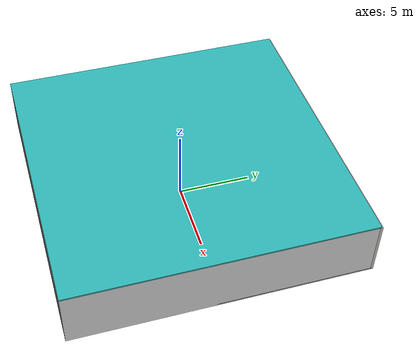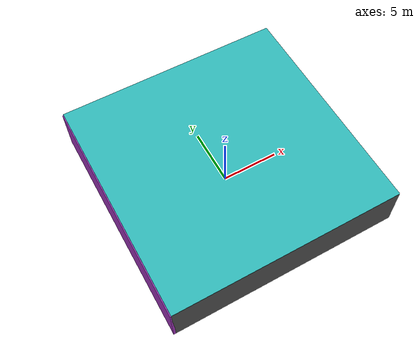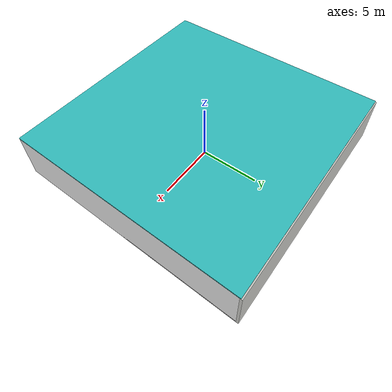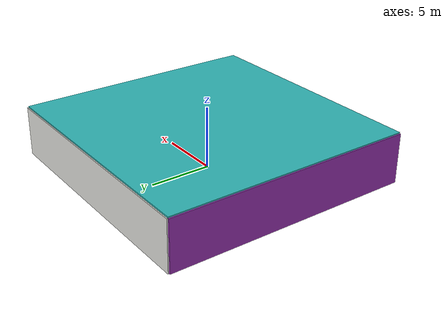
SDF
<sdf version="1.4">
 <world name="default">
  <physics type="ode">
   <max_step_size>0.001</max_step_size>
   <real_time_factor>1</real_time_factor>
   <real_time_update_rate>1000</real_time_update_rate>
   <gravity>0 0 -9.8</gravity>
  </physics>
  <scene><ambient>0.4 0.4 0.4 1</ambient><background>0.7 0.7 0.7 1</background><shadows>1</shadows></scene>
  <model name="Surrounding">
   <static>1</static>
   <link name="Ceiling">
    <collision name="Ceiling_Collision"><geometry><box><size>20 20 0.1</size></box></geometry></collision>
    <visual name="Ceiling_Visual">
     <geometry><box><size>20 20 0.1</size></box></geometry>
     <material>
      <script><uri>file://media/materials/scripts/gazebo.material</uri><name>Gazebo/TurquoiseGlow</name></script>
     </material>
    </visual>
    <pose>0 0 4.05 0 0 0</pose>
   </link>
   <link name="Wall_South">
    <collision name="Wall_South_Collision">
     <geometry><box><size>20 0 4</size></box></geometry>
     <pose>0 0 2 0 -0 0</pose>
    </collision>
    <visual name="Wall_South_Visual">
     <pose>0 0 2 0 -0 0</pose>
     <geometry><box><size>20 0 4</size></box></geometry>
     <material>
      <script><uri>file://media/materials/scripts/gazebo.material</uri><name>Gazebo/Road</name></script>
     </material>
    </visual>
    <velocity_decay><linear>0</linear><angular>0</angular></velocity_decay>
    <pose>0 -10 0 0 -0 0</pose>
   </link>
   <link name="Wall_East">
    <collision name="Wall_21_Collision">
     <geometry><box><size>20 0 4</size></box></geometry>
     <pose>0 0 2 0 -0 0</pose>
    </collision>
    <visual name="Wall_21_Visual">
     <pose>0 0 2 0 -0 0</pose>
     <geometry><box><size>20 0 4</size></box></geometry>
     <material>
      <script><uri>file://media/materials/scripts/gazebo.material</uri><name>Gazebo/WhiteGlow</name></script>
     </material>
    </visual>
    <velocity_decay><linear>0</linear><angular>0</angular></velocity_decay>
    <pose>10 0 0 0 -0 1.5708</pose>
   </link>
   <link name="Wall_North">
    <collision name="Wall_22_Collision">
     <geometry><box><size>20 0.2 4</size></box></geometry>
     <pose>0 0 2 0 -0 0</pose>
    </collision>
    <visual name="Wall_22_Visual">
     <pose>0 0 2 0 -0 0</pose>
     <geometry><box><size>20 0.2 4</size></box></geometry>
     <material>
      <script><uri>file://media/materials/scripts/gazebo.material</uri><name>Gazebo/CeilingTiled</name></script>
     </material>
    </visual>
    <velocity_decay><linear>0</linear><angular>0</angular></velocity_decay>
    <pose>0 10 0 0 -0 0</pose>
   </link>
   <link name="Wall_West">
    <collision name="Wall_23_Collision">
     <geometry><box><size>20 0.2 4</size></box></geometry>
     <pose>0 0 2 0 -0 0</pose>
    </collision>
    <visual name="Wall_23_Visual">
     <pose>0 0 2 0 -0 0</pose>
     <geometry><box><size>20 0.2 4</size></box></geometry>
     <material>
      <script><uri>file://media/materials/scripts/gazebo.material</uri><name>Gazebo/PurpleGlow</name></script>
     </material>
    </visual>
    <velocity_decay><linear>0</linear><angular>0</angular></velocity_decay>
    <pose>-10 0 0 0 0 -1.5708</pose>
   </link>
   <link name="Ground_link">
    <collision name="collision">
     <pose>0 0 .05 0 -0 0</pose>
     <geometry><box><size>20 20 0.1</size></box></geometry>
    </collision>
    <visual name="visual">
     <pose>0 0 .05 0 -0 0</pose>
     <geometry><box><size>20 20 0.1</size></box></geometry>
     <material>
      <script><uri>file://media/materials/scripts/gazebo.material</uri><name>Gazebo/Grey</name></script>
     </material>
    </visual>
   </link>
   <static>1</static>
  </model>
  <spherical_coordinates>
   <surface_model>EARTH_WGS84</surface_model>
   <latitude_deg>0</latitude_deg>
   <longitude_deg>0</longitude_deg>
   <elevation>0</elevation>
   <heading_deg>0</heading_deg>
  </spherical_coordinates>
  <light name="lightball_0" type="diffuse">
   <diffuse>0.8 0.8 0.8 1</diffuse>
   <specular>0.2 0.2 0.2 1</specular>
   <attenuation>
    <range>100</range>
    <constant>0.7</constant>
    <linear>0.01</linear>
    <quadratic>0.001</quadratic>
   </attenuation>
   <direction>-0.5 0.1 -0.9</direction>
   <pose>-2.12548193292 1.3463109624 1.05063281036 0 0 0</pose>
  </light>
  <light name="lightball_1" type="diffuse">
   <diffuse>0.8 0.8 0.8 1</diffuse>
   <specular>0.2 0.2 0.2 1</specular>
   <attenuation>
    <range>100</range>
    <constant>0.7</constant>
    <linear>0.01</linear>
    <quadratic>0.001</quadratic>
   </attenuation>
   <direction>-0.5 0.1 -0.9</direction>
   <pose>9.52622737087 1.13383821043 1.20469005897 0 0 0</pose>
  </light>
  <light name="lightball_2" type="diffuse">
   <diffuse>0.8 0.8 0.8 1</diffuse>
   <specular>0.2 0.2 0.2 1</specular>
   <attenuation>
    <range>100</range>
    <constant>0.7</constant>
    <linear>0.01</linear>
    <quadratic>0.001</quadratic>
   </attenuation>
   <direction>-0.5 0.1 -0.9</direction>
   <pose>-1.66750461904 -0.974155469836 1.21316819811 0 0 0</pose>
  </light>
  <light name="lightball_3" type="diffuse">
   <diffuse>0.8 0.8 0.8 1</diffuse>
   <specular>0.2 0.2 0.2 1</specular>
   <attenuation>
    <range>100</range>
    <constant>0.7</constant>
    <linear>0.01</linear>
    <quadratic>0.001</quadratic>
   </attenuation>
   <direction>-0.5 0.1 -0.9</direction>
   <pose>2.1894106143 -5.36260815214 1.46392110615 0 0 0</pose>
  </light>
  <light name="lightball_4" type="diffuse">
   <diffuse>0.8 0.8 0.8 1</diffuse>
   <specular>0.2 0.2 0.2 1</specular>
   <attenuation>
    <range>100</range>
    <constant>0.7</constant>
    <linear>0.01</linear>
    <quadratic>0.001</quadratic>
   </attenuation>
   <direction>-0.5 0.1 -0.9</direction>
   <pose>-0.523515179288 7.19485478538 1.04245289387 0 0 0</pose>
  </light>
  <light name="lightball_5" type="diffuse">
   <diffuse>0.8 0.8 0.8 1</diffuse>
   <specular>0.2 0.2 0.2 1</specular>
   <attenuation>
    <range>100</range>
    <constant>0.7</constant>
    <linear>0.01</linear>
    <quadratic>0.001</quadratic>
   </attenuation>
   <direction>-0.5 0.1 -0.9</direction>
   <pose>3.38964767683 -2.85292668361 3.74718654172 0 0 0</pose>
  </light>
  <light name="lightball_6" type="diffuse">
   <diffuse>0.8 0.8 0.8 1</diffuse>
   <specular>0.2 0.2 0.2 1</specular>
   <attenuation>
    <range>100</range>
    <constant>0.7</constant>
    <linear>0.01</linear>
    <quadratic>0.001</quadratic>
   </attenuation>
   <direction>-0.5 0.1 -0.9</direction>
   <pose>-8.57630824481 3.07995819317 2.34549166007 0 0 0</pose>
  </light>
  <include>
   <uri>model://robocup_3Dsim_goal</uri>
   <pose>-0.849309642249 5.05486307238 0 0 0 1.29635803481</pose>
  </include>
  <include>
   <uri>model://textured_shapes</uri>
   <pose>1.18683743449 4.71549049606 0 0 0 2.60533977249</pose>
  </include>
  <include><uri>model://table</uri><pose>1.22879603499 8.25656378568 0 0 0 0.00901765107361</pose></include>
  <include><uri>model://cabinet</uri><pose>7.53200358149 4.99780846874 0 0 0 0.234169016069</pose></include>
 </world>
</sdf>

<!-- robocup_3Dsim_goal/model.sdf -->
<sdf version="1.5">
  <model name="robocup_3d_goal">
    <static>true</static>
    <link name="left_post">
      <pose>0 1.05 0.45 0 0 0</pose>
      <collision name="collision">
        <geometry>
          <cylinder>
            <radius>0.05</radius>
            <length>0.9</length>
          </cylinder>
        </geometry>
      </collision>
      <visual name="visual">
        <geometry>
          <cylinder>
            <radius>0.05</radius>
            <length>0.9</length>
          </cylinder>
        </geometry>
        <material>
          <script>
            <uri>file://media/materials/scripts/gazebo.material</uri>
            <name>Gazebo/ZincYellow</name>
          </script>
        </material>
      </visual>
    </link>
    <link name="left_support_horiz_lower">
      <pose>0.30 1.05 0.01 0 0 0</pose>
      <collision name="collision">
        <geometry>
          <box>
            <size>0.50 0.02 0.02</size>
          </box>
        </geometry>
      </collision>
      <visual name="visual">
        <geometry>
          <box>
            <size>0.50 0.02 0.02</size>
          </box>
        </geometry>
        <material>
          <script>
            <uri>file://media/materials/scripts/gazebo.material</uri>
            <name>Gazebo/White</name>
          </script>
        </material>
      </visual>
    </link>
    <link name="left_support_horiz_upper">
      <pose>0.30 1.05 0.79 0 0 0</pose>
      <collision name="collision">
        <geometry>
          <box>
            <size>0.50 0.02 0.02</size>
          </box>
        </geometry>
      </collision>
      <visual name="visual">
        <geometry>
          <box>
            <size>0.50 0.02 0.02</size>
          </box>
        </geometry>
        <material>
          <script>
            <uri>file://media/materials/scripts/gazebo.material</uri>
            <name>Gazebo/White</name>
          </script>
        </material>
      </visual>
    </link>
    <link name="left_support_vertical">
      <pose>0.56 1.05 0.4 0 1.5708 0</pose>
      <collision name="collision">
        <geometry>
          <box>
            <size>0.80 0.02 0.02</size>
          </box>
        </geometry>
      </collision>
      <visual name="visual">
        <geometry>
          <box>
            <size>0.80 0.02 0.02</size>
          </box>
        </geometry>
        <material>
          <script>
            <uri>file://media/materials/scripts/gazebo.material</uri>
            <name>Gazebo/White</name>
          </script>
        </material>
      </visual>
    </link>
    <link name="right_support_horiz_lower">
      <pose>0.30 -1.05 0.01 0 0 0</pose>
      <collision name="collision">
        <geometry>
          <box>
            <size>0.50 0.02 0.02</size>
          </box>
        </geometry>
      </collision>
      <visual name="visual">
        <geometry>
          <box>
            <size>0.50 0.02 0.02</size>
          </box>
        </geometry>
        <material>
          <script>
            <uri>file://media/materials/scripts/gazebo.material</uri>
            <name>Gazebo/White</name>
          </script>
        </material>
      </visual>
    </link>
    <link name="right_support_horiz_upper">
      <pose>0.30 -1.05 0.79 0 0 0</pose>
      <collision name="collision">
        <geometry>
          <box>
            <size>0.50 0.02 0.02</size>
          </box>
        </geometry>
      </collision>
      <visual name="visual">
        <geometry>
          <box>
            <size>0.50 0.02 0.02</size>
          </box>
        </geometry>
        <material>
          <script>
            <uri>file://media/materials/scripts/gazebo.material</uri>
            <name>Gazebo/White</name>
          </script>
        </material>
      </visual>
    </link>
    <link name="right_support_vertical">
      <pose>0.56 -1.05 0.4 0 1.5708 0</pose>
      <collision name="collision">
        <geometry>
          <box>
            <size>0.80 0.02 0.02</size>
          </box>
        </geometry>
      </collision>
      <visual name="visual">
        <geometry>
          <box>
            <size>0.80 0.02 0.02</size>
          </box>
        </geometry>
        <material>
          <script>
            <uri>file://media/materials/scripts/gazebo.material</uri>
            <name>Gazebo/White</name>
          </script>
        </material>
      </visual>
    </link>
    <link name="center_support_horiz_lower">
      <pose>0.56 0 0.01 0 1.5708 0</pose>
      <collision name="collision">
        <geometry>
          <box>
            <size>0.02 2.08 0.02</size>
          </box>
        </geometry>
      </collision>
      <visual name="visual">
        <geometry>
          <box>
            <size>0.02 2.08 0.02</size>
          </box>
        </geometry>
        <material>
          <script>
            <uri>file://media/materials/scripts/gazebo.material</uri>
            <name>Gazebo/White</name>
          </script>
        </material>
      </visual>
    </link>
    <link name="center_support_horiz_upper">
      <pose>0.56 0 0.79 0 1.5708 0</pose>
      <collision name="collision">
        <geometry>
          <box>
            <size>0.02 2.08 0.02</size>
          </box>
        </geometry>
      </collision>
      <visual name="visual">
        <geometry>
          <box>
            <size>0.02 2.08 0.02</size>
          </box>
        </geometry>
        <material>
          <script>
            <uri>file://media/materials/scripts/gazebo.material</uri>
            <name>Gazebo/White</name>
          </script>
        </material>
      </visual>
    </link>
    <link name="right_post">
      <pose>0 -1.05 0.45 0 0 0</pose>
      <collision name="collision">
        <geometry>
          <cylinder>
            <radius>0.05</radius>
            <length>0.9</length>
          </cylinder>
        </geometry>
      </collision>
      <visual name="visual">
        <geometry>
          <cylinder>
            <radius>0.05</radius>
            <length>0.9</length>
          </cylinder>
        </geometry>
        <material>
          <script>
            <uri>file://media/materials/scripts/gazebo.material</uri>
            <name>Gazebo/ZincYellow</name>
          </script>
        </material>
      </visual>
    </link>
    <link name="crossbar">
      <pose>0 0 0.85 1.57 1.57 0</pose>
      <collision name="collision">
        <geometry>
          <cylinder>
            <radius>0.05</radius>
            <length>2.0</length>
          </cylinder>
        </geometry>
      </collision>
      <visual name="visual">
        <geometry>
          <cylinder>
            <radius>0.05</radius>
            <length>2.0</length>
          </cylinder>
        </geometry>
        <material>
          <script>
            <uri>file://media/materials/scripts/gazebo.material</uri>
            <name>Gazebo/ZincYellow</name>
          </script>
        </material>
      </visual>
    </link>
    <link name="center_net">
      <pose>0.56 0 0.40 0 0 0</pose>
      <collision name="collision">
        <geometry>
          <box>
            <size>0.01 2.1 0.80</size>
          </box>
        </geometry>
      </collision>
      <visual name="visual">
        <geometry>
          <box>
            <size>0.01 2.1 0.80</size>
          </box>
        </geometry>
        <material>
          <script>
            <uri>model://../model_source/models/robocup09_spl_field/materials/scripts/</uri>
            <uri>model://../model_source/models/robocup09_spl_field/materials/textures/</uri>
            <name>RoboCup/Net</name>
          </script>
        </material>
      </visual>
    </link>
    <link name="left_net">
      <pose>0.30 1.05 0.40 0 0 0</pose>
      <collision name="collision">
        <geometry>
          <box>
            <size>0.50 0.01 0.76</size>
          </box>
        </geometry>
      </collision>
      <visual name="visual">
        <geometry>
          <box>
            <size>0.50 0.01 0.76</size>
          </box>
        </geometry>
        <material>
          <script>
            <uri>model://../model_source/models/robocup09_spl_field/materials/scripts/</uri>
            <uri>model://../model_source/models/robocup09_spl_field/materials/textures/</uri>
            <name>RoboCup/Net</name>
          </script>
        </material>
      </visual>
    </link>
    <link name="right_net">
      <pose>0.30 -1.05 0.40 0 0 0</pose>
      <collision name="collision">
        <geometry>
          <box>
            <size>0.50 0.01 0.76</size>
          </box>
        </geometry>
      </collision>
      <visual name="visual">
        <geometry>
          <box>
            <size>0.50 0.01 0.76</size>
          </box>
        </geometry>
        <material>
          <script>
            <uri>model://../model_source/models/robocup09_spl_field/materials/scripts/</uri>
            <uri>model://../model_source/models/robocup09_spl_field/materials/textures/</uri>
            <name>RoboCup/Net</name>
          </script>
        </material>
      </visual>
    </link>
  </model>
</sdf>

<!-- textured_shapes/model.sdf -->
<sdf version="1.6">
  <model name="textured_shapes">
    <pose>0 0 0.5 0 0 0</pose>
    <link name="box">
      <pose>0 -1.5 0 0 0 0</pose>
      <collision name="collision">
        <geometry>
          <box>
            <size>1 1 1</size>
          </box>
        </geometry>
      </collision>
      <visual name="visual">
        <geometry>
          <box>
            <size>1 1 1</size>
          </box>
        </geometry>
        <material>
          <script>
            <uri>model://../model_source/models/textured_shapes/materials/scripts</uri>
            <uri>model://../model_source/models/textured_shapes/materials/textures</uri>
            <name>TexturedShape/Squares</name>
          </script>
        </material>
      </visual>
    </link>
    <link name="sphere">
      <collision name="collision">
        <geometry>
          <sphere>
            <radius>0.5</radius>
          </sphere>
        </geometry>
      </collision>
      <visual name="visual">
        <geometry>
          <sphere>
            <radius>0.5</radius>
          </sphere>
        </geometry>
        <material>
          <script>
            <uri>model://../model_source/models/textured_shapes/materials/scripts</uri>
            <uri>model://../model_source/models/textured_shapes/materials/textures</uri>
            <name>TexturedShape/Squares</name>
          </script>
        </material>
      </visual>
    </link>
    <link name="cylinder">
      <pose>0 1.5 0 0 0 0</pose>
      <collision name="collision">
        <geometry>
          <cylinder>
            <radius>0.5</radius>
            <length>1</length>
          </cylinder>
        </geometry>
      </collision>
      <visual name="visual">
        <geometry>
          <cylinder>
            <radius>0.5</radius>
            <length>1</length>
          </cylinder>
        </geometry>
        <material>
          <script>
            <uri>model://../model_source/models/textured_shapes/materials/scripts</uri>
            <uri>model://../model_source/models/textured_shapes/materials/textures</uri>
            <name>TexturedShape/Squares</name>
          </script>
        </material>
      </visual>
    </link>
  </model>
</sdf>

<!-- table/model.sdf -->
<sdf version="1.5">
  <model name="table">
    <static>true</static>
    <link name="link">
      <collision name="surface">
        <pose>0 0 1.0 0 0 0</pose>
        <geometry>
          <box>
            <size>1.5 0.8 0.03</size>
          </box>
        </geometry>
        <surface>
          <friction>
            <ode>
              <mu>0.6</mu>
              <mu2>0.6</mu2>
            </ode>
          </friction>
        </surface>
      </collision>
      <visual name="visual1">
        <pose>0 0 1.0 0 0 0</pose>
        <geometry>
          <box>
            <size>1.5 0.8 0.03</size>
          </box>
        </geometry>
        <material>
          <script>
            <uri>model://media/materials/scripts/gazebo.material</uri>
            <name>Gazebo/Wood</name>
          </script>
        </material>
      </visual>
      <collision name="front_left_leg">
        <pose>0.68 0.38 0.5 0 0 0</pose>
        <geometry>
          <cylinder>
            <radius>0.02</radius>
            <length>1.0</length>
          </cylinder>
        </geometry>
      </collision>
      <visual name="front_left_leg">
        <pose>0.68 0.38 0.5 0 0 0</pose>
        <geometry>
          <cylinder>
            <radius>0.02</radius>
            <length>1.0</length>
          </cylinder>
        </geometry>
        <material>
          <script>
            <uri>model://media/materials/scripts/gazebo.material</uri>
            <name>Gazebo/Grey</name>
          </script>
        </material>
      </visual>
      <collision name="front_right_leg">
        <pose>0.68 -0.38 0.5 0 0 0</pose>
        <geometry>
          <cylinder>
            <radius>0.02</radius>
            <length>1.0</length>
          </cylinder>
        </geometry>
      </collision>
      <visual name="front_right_leg">
        <pose>0.68 -0.38 0.5 0 0 0</pose>
        <geometry>
          <cylinder>
            <radius>0.02</radius>
            <length>1.0</length>
          </cylinder>
        </geometry>
        <material>
          <script>
            <uri>model://media/materials/scripts/gazebo.material</uri>
            <name>Gazebo/Grey</name>
          </script>
        </material>
      </visual>
      <collision name="back_right_leg">
        <pose>-0.68 -0.38 0.5 0 0 0</pose>
        <geometry>
          <cylinder>
            <radius>0.02</radius>
            <length>1.0</length>
          </cylinder>
        </geometry>
      </collision>
      <visual name="back_right_leg">
        <pose>-0.68 -0.38 0.5 0 0 0</pose>
        <geometry>
          <cylinder>
            <radius>0.02</radius>
            <length>1.0</length>
          </cylinder>
        </geometry>
        <material>
          <script>
            <uri>model://media/materials/scripts/gazebo.material</uri>
            <name>Gazebo/Grey</name>
          </script>
        </material>
      </visual>
      <collision name="back_left_leg">
        <pose>-0.68 0.38 0.5 0 0 0</pose>
        <geometry>
          <cylinder>
            <radius>0.02</radius>
            <length>1.0</length>
          </cylinder>
        </geometry>
      </collision>
      <visual name="back_left_leg">
        <pose>-0.68 0.38 0.5 0 0 0</pose>
        <geometry>
          <cylinder>
            <radius>0.02</radius>
            <length>1.0</length>
          </cylinder>
        </geometry>
        <material>
          <script>
            <uri>model://media/materials/scripts/gazebo.material</uri>
            <name>Gazebo/Grey</name>
          </script>
        </material>
      </visual>
    </link>
  </model>
</sdf>

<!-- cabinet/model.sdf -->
<sdf version="1.5">
  <model name="cabinet">
    <static>true</static>
    <link name="cabinet_bottom_plate">
      <inertial>
        <pose>0 0 -1 0 0 0</pose>
        <inertia>
          <ixx>2.050000</ixx>
          <ixy>0</ixy>
          <ixz>0</ixz>
          <iyy>2.050000</iyy>
          <iyz>0</iyz>
          <izz>2.050000</izz>
        </inertia>
        <mass>25.000000</mass>
      </inertial>
      <collision name="cabinet_bottom_plate_geom">
        <pose>0 0 0.010000 0 0 0</pose>
        <geometry>
          <box>
            <size>0.450000 0.450000 0.020000</size>
          </box>
        </geometry>
      </collision>
      <visual name="cabinet_bottom_plate_geom_visual">
        <pose>0 0 0.010000 0 0 0</pose>
        <geometry>
          <box>
            <size>0.450000 0.450000 0.020000</size>
          </box>
        </geometry>
        <material>
          <script>
            <uri>model://media/materials/scripts/gazebo.material</uri>
            <name>Gazebo/Wood</name>
          </script>
        </material>
      </visual>
      <collision name="cabinet_bottom_plate_geom_cabinet_back_plate">
        <pose>0.235000 0 0.510000 0 0 0</pose>
        <geometry>
          <box>
            <size>0.020000 0.450000 1.020000</size>
          </box>
        </geometry>
      </collision>
      <visual name="cabinet_bottom_plate_geom_cabinet_back_plate_visual">
        <pose>0.235000 0 0.510000 0 0 0</pose>
        <geometry>
          <box>
            <size>0.020000 0.450000 1.020000</size>
          </box>
        </geometry>
        <material>
          <script>
            <uri>model://media/materials/scripts/gazebo.material</uri>
            <name>Gazebo/Wood</name>
          </script>
        </material>
      </visual>
      <collision name="cabinet_bottom_plate_geom_cabinet_left_plate">
        <pose>0 0.235000 0.510000 0 0 0</pose>
        <geometry>
          <box>
            <size>0.450000 0.020000 1.020000</size>
          </box>
        </geometry>
      </collision>
      <visual name="cabinet_bottom_plate_geom_cabinet_left_plate_visual">
        <pose>0 0.235000 0.510000 0 0 0</pose>
        <geometry>
          <box>
            <size>0.450000 0.020000 1.020000</size>
          </box>
        </geometry>
        <material>
          <script>
            <uri>model://media/materials/scripts/gazebo.material</uri>
            <name>Gazebo/Wood</name>
          </script>
        </material>
      </visual>
      <collision name="cabinet_bottom_plate_geom_cabinet_middle_plate">
        <pose>0 0 0.510000 0 0 0</pose>
        <geometry>
          <box>
            <size>0.450000 0.450000 0.020000</size>
          </box>
        </geometry>
      </collision>
      <visual name="cabinet_bottom_plate_geom_cabinet_middle_plate_visual">
        <pose>0 0 0.510000 0 0 0</pose>
        <geometry>
          <box>
            <size>0.450000 0.450000 0.020000</size>
          </box>
        </geometry>
        <material>
          <script>
            <uri>model://media/materials/scripts/gazebo.material</uri>
            <name>Gazebo/Wood</name>
          </script>
        </material>
      </visual>
      <collision name="cabinet_bottom_plate_geom_cabinet_right_plate">
        <pose>0 -0.235000 0.510000 0 0 0</pose>
        <geometry>
          <box>
            <size>0.450000 0.020000 1.020000</size>
          </box>
        </geometry>
      </collision>
      <visual name="cabinet_bottom_plate_geom_cabinet_right_plate_visual">
        <pose>0 -0.235000 0.510000 0 0 0</pose>
        <geometry>
          <box>
            <size>0.450000 0.020000 1.020000</size>
          </box>
        </geometry>
        <material>
          <script>
            <uri>model://media/materials/scripts/gazebo.material</uri>
            <name>Gazebo/Wood</name>
          </script>
        </material>
      </visual>
      <collision name="cabinet_bottom_plate_geom_cabinet_top_plate">
        <pose>0 0 1.010000 0 0 0</pose>
        <geometry>
          <box>
            <size>0.450000 0.450000 0.020000</size>
          </box>
        </geometry>
      </collision>
      <visual name="cabinet_bottom_plate_geom_cabinet_top_plate_visual">
        <pose>0 0 1.010000 0 0 0</pose>
        <geometry>
          <box>
            <size>0.450000 0.450000 0.020000</size>
          </box>
        </geometry>
        <material>
          <script>
            <uri>model://media/materials/scripts/gazebo.material</uri>
            <name>Gazebo/Wood</name>
          </script>
        </material>
      </visual>
    </link>
  </model>
</sdf>
